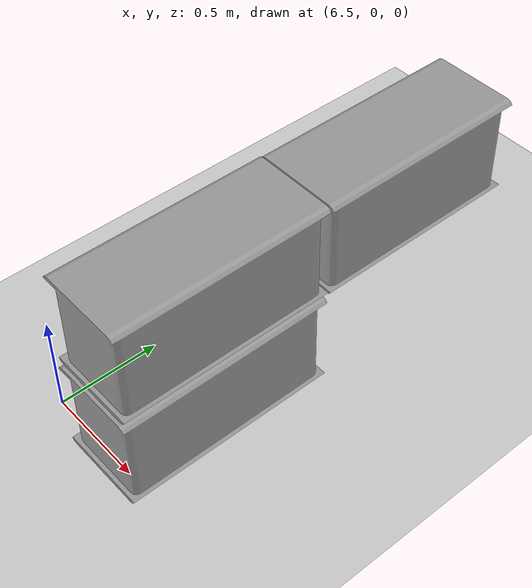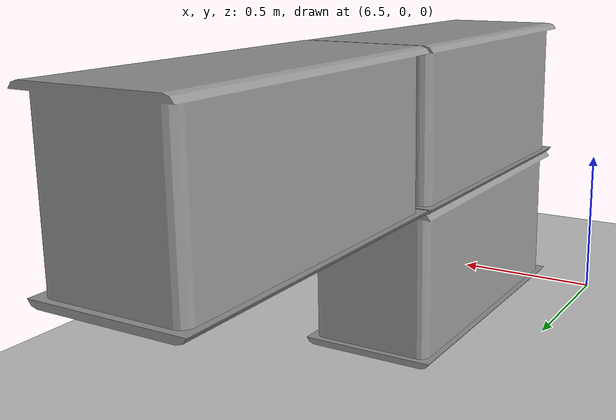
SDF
<sdf version="1.7">
 <world name="default">
  <model name="ground_plane">
   <static>1</static>
   <link name="link">
    <collision name="collision">
     <geometry><plane><normal>0 0 1</normal><size>100 100</size></plane></geometry>
     <surface>
      <contact><collide_bitmask>65535</collide_bitmask></contact>
      <friction><ode><mu>100</mu><mu2>50</mu2></ode></friction>
     </surface>
    </collision>
    <visual name="visual">
     <cast_shadows>0</cast_shadows>
     <geometry><plane><normal>0 0 1</normal><size>100 100</size></plane></geometry>
     <material>
      <script><uri>file://media/materials/scripts/gazebo.material</uri><name>Gazebo/Grey</name></script>
     </material>
    </visual>
   </link>
  </model>
  <model name="cotton_ok_0">
   <link name="link_0">
    <inertial>
     <mass>1</mass>
     <inertia>
      <ixx>0.166667</ixx>
      <ixy>0</ixy>
      <ixz>0</ixz>
      <iyy>0.166667</iyy>
      <iyz>0</iyz>
      <izz>0.166667</izz>
     </inertia>
    </inertial>
    <visual name="visual">
     <geometry><mesh><uri>file:///home/cyun/cotton_box.stl</uri><scale>1 1 1</scale></mesh></geometry>
     <material>
      <lighting>1</lighting>
      <script><uri>file://media/materials/scripts/gazebo.material</uri><name>Gazebo/Grey</name></script>
      <shader type="pixel"><normal_map>__default__</normal_map></shader>
      <ambient>0.3 0.3 0.3 1</ambient>
      <diffuse>0.7 0.7 0.7 1</diffuse>
      <specular>0.01 0.01 0.01 1</specular>
      <emissive>0 0 0 1</emissive>
     </material>
    </visual>
    <collision name="collision">
     <geometry><mesh><uri>file:///home/cyun/cotton_box.stl</uri><scale>1 1 1</scale></mesh></geometry>
     <surface>
      <friction>
       <ode><mu>1</mu><mu2>1</mu2><fdir1>0 0 0</fdir1><slip1>0</slip1><slip2>0</slip2></ode>
       <torsional>
        <coefficient>1</coefficient>
        <patch_radius>0</patch_radius>
        <surface_radius>0</surface_radius>
        <use_patch_radius>1</use_patch_radius>
        <ode><slip>0</slip></ode>
       </torsional>
      </friction>
      <bounce><restitution_coefficient>0</restitution_coefficient><threshold>1e+06</threshold></bounce>
      <contact>
       <collide_without_contact>0</collide_without_contact>
       <collide_without_contact_bitmask>1</collide_without_contact_bitmask>
       <collide_bitmask>1</collide_bitmask>
       <ode>
        <soft_cfm>0</soft_cfm>
        <soft_erp>0.2</soft_erp>
        <kp>1e+13</kp>
        <kd>1</kd>
        <max_vel>0.01</max_vel>
        <min_depth>0</min_depth>
       </ode>
       <bullet>
        <split_impulse>1</split_impulse>
        <split_impulse_penetration_threshold>-0.01</split_impulse_penetration_threshold>
        <soft_cfm>0</soft_cfm>
        <soft_erp>0.2</soft_erp>
        <kp>1e+13</kp>
        <kd>1</kd>
       </bullet>
      </contact>
     </surface>
    </collision>
   </link>
   <static>0</static>
   <pose>6.91848 0.441709 0.019981 -1e-06 1e-06 0.000557</pose>
  </model>
  <model name="cotton_ok_1">
   <link name="link_0">
    <inertial>
     <mass>1</mass>
     <inertia>
      <ixx>0.166667</ixx>
      <ixy>0</ixy>
      <ixz>0</ixz>
      <iyy>0.166667</iyy>
      <iyz>0</iyz>
      <izz>0.166667</izz>
     </inertia>
    </inertial>
    <visual name="visual">
     <geometry><mesh><uri>file:///home/cyun/cotton_box.stl</uri><scale>1 1 1</scale></mesh></geometry>
     <material>
      <lighting>1</lighting>
      <script><uri>file://media/materials/scripts/gazebo.material</uri><name>Gazebo/Grey</name></script>
      <shader type="pixel"><normal_map>__default__</normal_map></shader>
      <ambient>0.3 0.3 0.3 1</ambient>
      <diffuse>0.7 0.7 0.7 1</diffuse>
      <specular>0.01 0.01 0.01 1</specular>
      <emissive>0 0 0 1</emissive>
     </material>
    </visual>
    <collision name="collision">
     <geometry><mesh><uri>file:///home/cyun/cotton_box.stl</uri><scale>1 1 1</scale></mesh></geometry>
     <surface>
      <friction>
       <ode><mu>1</mu><mu2>1</mu2><fdir1>0 0 0</fdir1><slip1>0</slip1><slip2>0</slip2></ode>
       <torsional>
        <coefficient>1</coefficient>
        <patch_radius>0</patch_radius>
        <surface_radius>0</surface_radius>
        <use_patch_radius>1</use_patch_radius>
        <ode><slip>0</slip></ode>
       </torsional>
      </friction>
      <bounce><restitution_coefficient>0</restitution_coefficient><threshold>1e+06</threshold></bounce>
      <contact>
       <collide_without_contact>0</collide_without_contact>
       <collide_without_contact_bitmask>1</collide_without_contact_bitmask>
       <collide_bitmask>1</collide_bitmask>
       <ode>
        <soft_cfm>0</soft_cfm>
        <soft_erp>0.2</soft_erp>
        <kp>1e+13</kp>
        <kd>1</kd>
        <max_vel>0.01</max_vel>
        <min_depth>0</min_depth>
       </ode>
       <bullet>
        <split_impulse>1</split_impulse>
        <split_impulse_penetration_threshold>-0.01</split_impulse_penetration_threshold>
        <soft_cfm>0</soft_cfm>
        <soft_erp>0.2</soft_erp>
        <kp>1e+13</kp>
        <kd>1</kd>
       </bullet>
      </contact>
     </surface>
    </collision>
   </link>
   <static>0</static>
   <pose>6.91165 1.50555 0.509943 -3.2e-05 1.1e-05 -0.000111</pose>
  </model>
  <model name="cotton_ok_2">
   <link name="link_0">
    <inertial>
     <mass>1</mass>
     <inertia>
      <ixx>0.166667</ixx>
      <ixy>0</ixy>
      <ixz>0</ixz>
      <iyy>0.166667</iyy>
      <iyz>0</iyz>
      <izz>0.166667</izz>
     </inertia>
    </inertial>
    <visual name="visual">
     <geometry><mesh><uri>file:///home/cyun/cotton_box.stl</uri><scale>1 1 1</scale></mesh></geometry>
     <material>
      <lighting>1</lighting>
      <script><uri>file://media/materials/scripts/gazebo.material</uri><name>Gazebo/Grey</name></script>
      <shader type="pixel"><normal_map>__default__</normal_map></shader>
      <ambient>0.3 0.3 0.3 1</ambient>
      <diffuse>0.7 0.7 0.7 1</diffuse>
      <specular>0.01 0.01 0.01 1</specular>
      <emissive>0 0 0 1</emissive>
     </material>
    </visual>
    <collision name="collision">
     <geometry><mesh><uri>file:///home/cyun/cotton_box.stl</uri><scale>1 1 1</scale></mesh></geometry>
     <surface>
      <friction>
       <ode><mu>1</mu><mu2>1</mu2><fdir1>0 0 0</fdir1><slip1>0</slip1><slip2>0</slip2></ode>
       <torsional>
        <coefficient>1</coefficient>
        <patch_radius>0</patch_radius>
        <surface_radius>0</surface_radius>
        <use_patch_radius>1</use_patch_radius>
        <ode><slip>0</slip></ode>
       </torsional>
      </friction>
      <bounce><restitution_coefficient>0</restitution_coefficient><threshold>1e+06</threshold></bounce>
      <contact>
       <collide_without_contact>0</collide_without_contact>
       <collide_without_contact_bitmask>1</collide_without_contact_bitmask>
       <collide_bitmask>1</collide_bitmask>
       <ode>
        <soft_cfm>0</soft_cfm>
        <soft_erp>0.2</soft_erp>
        <kp>1e+13</kp>
        <kd>1</kd>
        <max_vel>0.01</max_vel>
        <min_depth>0</min_depth>
       </ode>
       <bullet>
        <split_impulse>1</split_impulse>
        <split_impulse_penetration_threshold>-0.01</split_impulse_penetration_threshold>
        <soft_cfm>0</soft_cfm>
        <soft_erp>0.2</soft_erp>
        <kp>1e+13</kp>
        <kd>1</kd>
       </bullet>
      </contact>
     </surface>
    </collision>
   </link>
   <static>0</static>
   <pose>6.9058 0.459068 0.509981 0 0 -0.000695</pose>
  </model>
 </world>
</sdf>
